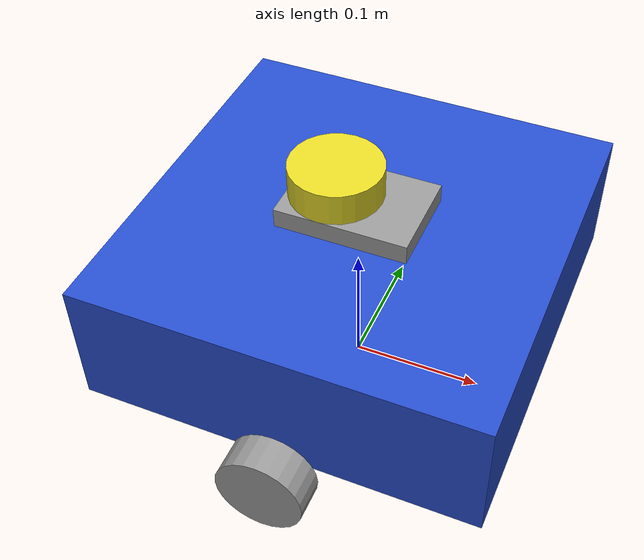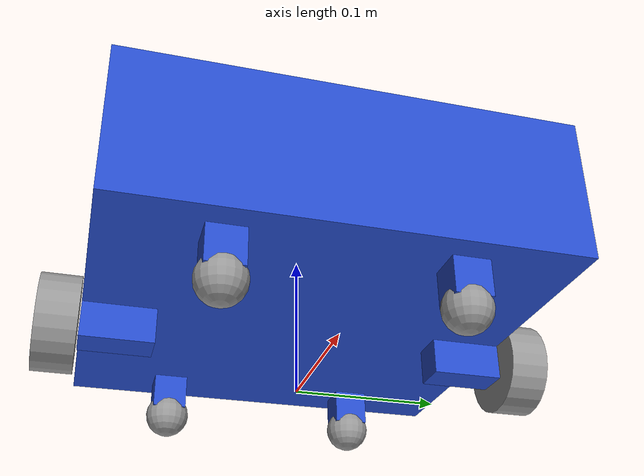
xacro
<?xml version="1.0"?>
<robot name="mybot" xmlns:xacro="http://www.ros.org/wiki/xacro">

  <!-- Start GZ or Ignition depending on ROS 2 Version -->
  <xacro:arg name="is_ignition" default="true"/>

  <!-- Load Simulated or Real Hardware Interfaces -->
  <xacro:arg name="is_sim" default="true"/>

  <!-- Include Gazebo Parameters -->
  <xacro:include filename="$(find mybot_description)/urdf/mybot_gazebo.xacro" />

  <!-- Include ros2_control Plugins -->
  <xacro:include filename="$(find mybot_description)/urdf/mybot_ros2_control.xacro" />

    <xacro:include filename="common_properties.xacro" />

    <xacro:property name="base_length" value="0.3" />
    <xacro:property name="base_width" value="0.3" />
    <xacro:property name="base_height" value="0.1" />

    <xacro:property name="engine_length" value="0.025" />
    <xacro:property name="engine_width" value="0.05" />
    <xacro:property name="engine_height" value="0.025" />

    <xacro:property name="caster_base_length" value="0.025" />
    <xacro:property name="caster_base_width" value="0.025" />
    <xacro:property name="caster_base_height" value="0.025" />

    <xacro:property name="lidar_base_length" value="0.1" />
    <xacro:property name="lidar_base_width" value="0.07" />
    <xacro:property name="lidar_base_height" value="0.03" />

    <xacro:property name="lidar_radius" value="0.035" />
    <xacro:property name="lidar_length" value="0.025" />

    <xacro:property name="wheel_radius" value="0.033" />
    <xacro:property name="wheel_length" value="0.027" />

    <!--Links-->

    <link name="base_footprint" />

    <link name="base_link">
        <visual>
            <geometry>
                <box size="${base_length} ${base_width} ${base_height}" />
            </geometry>
            <origin xyz="0 0 ${base_height / 2.0}" rpy="0 0 0" />
            <material name="blue" />
        </visual>
        <collision>
            <geometry>
                <box size="${base_length} ${base_width} ${base_height}" />
            </geometry>
            <origin xyz="0 0 ${base_height / 2.0}" rpy="0 0 0" />
        </collision>
        <xacro:box_inertia m="5.0" l="${2*base_length}" w="${2*base_width}" h="${2*base_height}"
                           xyz="0 0 ${base_height / 2.0}" rpy="0 0 0" />
    </link>

    <link name="caster_base_front_left_link">
        <visual>
            <geometry>
                <box size="${caster_base_length} ${caster_base_width} ${caster_base_height}" />
            </geometry>
            <origin xyz="0 0 0" rpy="0 0 0" />
            <material name="blue" />
        </visual>
        <collision>
            <geometry>
                <box size="${caster_base_length} ${caster_base_width} ${caster_base_height}" />
            </geometry>
            <origin xyz="0 0 0" rpy="0 0 0" />
        </collision>
        <xacro:box_inertia m="5.0" l="${2*caster_base_length}" w="${2*caster_base_width}" h="${2*caster_base_height}"
                           xyz="0 0 ${caster_base_height / 2.0}" rpy="0 0 0" />
    </link>

    <link name="caster_base_front_right_link">
        <visual>
            <geometry>
                <box size="${caster_base_length} ${caster_base_width} ${caster_base_height}" />
            </geometry>
            <origin xyz="0 0 0" rpy="0 0 0" />
            <material name="blue" />
        </visual>
        <collision>
            <geometry>
                <box size="${caster_base_length} ${caster_base_width} ${caster_base_height}" />
            </geometry>
            <origin xyz="0 0 0" rpy="0 0 0" />
        </collision>
        <xacro:box_inertia m="5.0" l="${2*caster_base_length}" w="${2*caster_base_width}" h="${2*caster_base_height}"
                           xyz="0 0 ${caster_base_height / 2.0}" rpy="0 0 0" />
    </link>

    <link name="caster_base_back_left_link">
        <visual>
            <geometry>
                <box size="${caster_base_length} ${caster_base_width} ${caster_base_height}" />
            </geometry>
            <origin xyz="0 0 0" rpy="0 0 0" />
            <material name="blue" />
        </visual>
        <collision>
            <geometry>
                <box size="${caster_base_length} ${caster_base_width} ${caster_base_height}" />
            </geometry>
            <origin xyz="0 0 0" rpy="0 0 0" />
        </collision>
        <xacro:box_inertia m="5.0" l="${2*caster_base_length}" w="${2*caster_base_width}" h="${2*caster_base_height}"
                           xyz="0 0 ${caster_base_height / 2.0}" rpy="0 0 0" />
    </link>

    <link name="caster_base_back_right_link">
        <visual>
            <geometry>
                <box size="${caster_base_length} ${caster_base_width} ${caster_base_height}" />
            </geometry>
            <origin xyz="0 0 0" rpy="0 0 0" />
            <material name="blue" />
        </visual>
        <collision>
            <geometry>
                <box size="${caster_base_length} ${caster_base_width} ${caster_base_height}" />
            </geometry>
            <origin xyz="0 0 0" rpy="0 0 0" />
        </collision>
        <xacro:box_inertia m="5.0" l="${2*caster_base_length}" w="${2*caster_base_width}" h="${2*caster_base_height}"
                           xyz="0 0 ${caster_base_height / 2.0}" rpy="0 0 0" />
    </link>

    <link name="left_engine_link">
        <visual>
            <geometry>
                <box size="${engine_length} ${engine_width} ${engine_height}" />
            </geometry>
            <origin xyz="0 0 0" rpy="0 0 0" />
            <material name="blue" />
        </visual>
        <collision>
            <geometry>
                <box size="${engine_length} ${engine_width} ${engine_height}" />
            </geometry>
            <origin xyz="0 0 0" rpy="0 0 0" />
        </collision>
        <xacro:box_inertia m="5.0" l="${2*engine_length}" w="${2*engine_width}" h="${2*engine_height}"
                           xyz="0 0 ${engine_height / 2.0}" rpy="0 0 0" />
    </link>

    <link name="right_engine_link">
        <visual>
            <geometry>
                <box size="${engine_length} ${engine_width} ${engine_height}" />
            </geometry>
            <origin xyz="0 0 0" rpy="0 0 0" />
            <material name="blue" />
        </visual>
        <collision>
            <geometry>
                <box size="${engine_length} ${engine_width} ${engine_height}" />
            </geometry>
            <origin xyz="0 0 0" rpy="0 0 0" />
        </collision>
        <xacro:box_inertia m="5.0" l="${2*engine_length}" w="${2*engine_width}" h="${2*engine_height}"
                           xyz="0 0 ${engine_height / 2.0}" rpy="0 0 0" />
    </link>

    <xacro:macro name="wheel_link" params="prefix">
        <link name="${prefix}_wheel_link">
            <visual>
                <geometry>
                    <cylinder radius="${wheel_radius}" length="${wheel_length}" />
                </geometry>
                <origin xyz="0 0 0" rpy="${pi / 2.0} 0 0" />
                <material name="grey" />
            </visual>
            <collision>
                <geometry>
                    <cylinder radius="${wheel_radius}" length="${wheel_length}" />
                </geometry>
                <origin xyz="0 0 0" rpy="${pi / 2.0} 0 0" />
            </collision>
            <xacro:cylinder_inertia m="1.0" r="${2*wheel_radius}" h="${2*wheel_length}"
                                    xyz="0 0 0" rpy="${pi / 2.0} 0 0" />
        </link>
    </xacro:macro>

    <xacro:wheel_link prefix="right" />
    <xacro:wheel_link prefix="left" />

    <link name="caster_wheel_front_left_link">
        <visual>
            <geometry>
                <sphere radius="${wheel_radius / 2.0}" />
            </geometry>
            <origin xyz="0 0 0" rpy="0 0 0" />
            <material name="grey" />
        </visual>
        <collision>
            <geometry>
                <sphere radius="${wheel_radius / 2.0}" />
            </geometry>
            <origin xyz="0 0 0" rpy="0 0 0" />
        </collision>
        <xacro:sphere_inertia m="0.5" r="${2*wheel_radius / 2.0}"
                              xyz="0 0 0" rpy="0 0 0" />
    </link>

    <link name="caster_wheel_front_right_link">
        <visual>
            <geometry>
                <sphere radius="${wheel_radius / 2.0}" />
            </geometry>
            <origin xyz="0 0 0" rpy="0 0 0" />
            <material name="grey" />
        </visual>
        <collision>
            <geometry>
                <sphere radius="${wheel_radius / 2.0}" />
            </geometry>
            <origin xyz="0 0 0" rpy="0 0 0" />
        </collision>
        <xacro:sphere_inertia m="0.5" r="${2*wheel_radius / 2.0}"
                              xyz="0 0 0" rpy="0 0 0" />
    </link>

    <link name="caster_wheel_back_left_link">
        <visual>
            <geometry>
                <sphere radius="${wheel_radius / 2.0}" />
            </geometry>
            <origin xyz="0 0 0" rpy="0 0 0" />
            <material name="grey" />
        </visual>
        <collision>
            <geometry>
                <sphere radius="${wheel_radius / 2.0}" />
            </geometry>
            <origin xyz="0 0 0" rpy="0 0 0" />
        </collision>
        <xacro:sphere_inertia m="0.5" r="${2*wheel_radius / 2.0}"
                              xyz="0 0 0" rpy="0 0 0" />
    </link>

    <link name="caster_wheel_back_right_link">
        <visual>
            <geometry>
                <sphere radius="${wheel_radius / 2.0}" />
            </geometry>
            <origin xyz="0 0 0" rpy="0 0 0" />
            <material name="grey" />
        </visual>
        <collision>
            <geometry>
                <sphere radius="${wheel_radius / 2.0}" />
            </geometry>
            <origin xyz="0 0 0" rpy="0 0 0" />
        </collision>
        <xacro:sphere_inertia m="0.5" r="${2*wheel_radius / 2.0}"
                              xyz="0 0 0" rpy="0 0 0" />
    </link>

    <link name="lidar_base_link">
        <visual>
            <geometry>
                <box size="${lidar_base_length} ${lidar_base_width} ${lidar_base_height}" />
            </geometry>
            <origin xyz="0 0 0" rpy="0 0 0" />
            <material name="grey" />
        </visual>
        <collision>
            <geometry>
                <box size="${lidar_base_length} ${lidar_base_width} ${lidar_base_height}" />
            </geometry>
            <origin xyz="0 0 0" rpy="0 0 0" />
        </collision>
        <xacro:box_inertia m="5.0" l="${2*lidar_base_length}" w="${2*lidar_base_width}" h="${2*lidar_base_height}"
                           xyz="0 0 ${lidar_base_height / 2.0}" rpy="0 0 0" />
    </link>

    <link name="lidar_link">
        <visual>
            <geometry>
                <cylinder radius="${lidar_radius}" length="${lidar_length}" />
            </geometry>
            <origin xyz="0 0 ${lidar_length / 2.0}" rpy="0 0 0" />
            <material name="yellow" />
        </visual>
        <collision>
            <geometry>
                <cylinder radius="${lidar_radius}" length="${lidar_length}" />
            </geometry>
            <origin xyz="0 0 ${lidar_length / 2.0}" rpy="0 0 0" />
        </collision>
        <xacro:cylinder_inertia m="0.3" r="${2*lidar_radius}" h="${2*lidar_length}"
                                xyz="0 0 ${lidar_length / 2.0}" rpy="0 0 0" />
    </link>

    <link name="camera_link">
        <collision>
        <origin xyz="0.005 0.000 0.013" rpy="0 0 0"/>
        <geometry>
            <box size="0.015 0.030 0.027"/>
        </geometry>
        </collision>
    </link>

    <link name="camera_rgb_frame"/>

    <link name="camera_rgb_optical_frame"/>

    <!--Joints-->

    <joint name="base_joint" type="fixed">
        <parent link="base_footprint" />
        <child link="base_link" />
        <origin xyz="0 0 ${wheel_radius + (engine_height / 2.0)}" rpy="0 0 0"/>
    </joint>

    <joint name="base_right_engine_joint" type="fixed">
        <parent link="base_link" />
        <child link="right_engine_link" />
        <origin xyz="0 ${-(base_width - engine_width) / 2.0} ${-(engine_height) / 2.0}" rpy="0 0 0"/>
    </joint>

    <joint name="base_left_engine_joint" type="fixed">
        <parent link="base_link" />
        <child link="left_engine_link" />
        <origin xyz="0 ${(base_width - engine_width) / 2.0} ${-(engine_height) / 2.0}" rpy="0 0 0"/>
    </joint>

    <joint name="base_caster_base_front_left_joint" type="fixed">
        <parent link="base_link" />
        <child link="caster_base_front_left_link" />
        <origin xyz="${base_length / 2.5} ${-(base_width) / 4 } ${-(caster_base_height) / 2.0}" rpy="0 0 0"/>
    </joint>

    <joint name="base_caster_base_front_right_joint" type="fixed">
        <parent link="base_link" />
        <child link="caster_base_front_right_link" />
        <origin xyz="${base_length / 2.5} ${(base_width) / 4 } ${-(caster_base_height) / 2.0}" rpy="0 0 0"/>
    </joint>

    <joint name="base_caster_base_back_left_joint" type="fixed">
        <parent link="base_link" />
        <child link="caster_base_back_left_link" />
        <origin xyz="${-base_length / 2.5} ${-(base_width) / 4 } ${-(caster_base_height) / 2.0}" rpy="0 0 0"/>
    </joint>

    <joint name="base_caster_base_back_right_joint" type="fixed">
        <parent link="base_link" />
        <child link="caster_base_back_right_link" />
        <origin xyz="${-base_length / 2.5} ${(base_width) / 4 } ${-(caster_base_height) / 2.0}" rpy="0 0 0"/>
    </joint>

    <joint name="right_engine_right_wheel_joint" type="continuous">
        <parent link="right_engine_link" />
        <child link="right_wheel_link" />
        <origin xyz="0 ${-(wheel_length + (engine_height / 2.0))} 0" rpy="0 0 0" />
        <axis xyz="0 1 0" />
    </joint>

    <joint name="left_engine_left_wheel_joint" type="continuous">
        <parent link="left_engine_link" />
        <child link="left_wheel_link" />
        <origin xyz="0 ${(wheel_length + (engine_height / 2.0))} 0" rpy="0 0 0" />
        <axis xyz="0 1 0" />
    </joint>

    <joint name="caster_base_caster_wheel_front_left_joint" type="fixed">
        <parent link="caster_base_front_left_link" />
        <child link="caster_wheel_front_left_link" />
        <origin xyz="0 0 ${-wheel_radius / 2.0}" rpy="0 0 0" />
    </joint>

    <joint name="caster_base_caster_wheel_front_right_joint" type="fixed">
        <parent link="caster_base_front_right_link" />
        <child link="caster_wheel_front_right_link" />
        <origin xyz="0 0 ${-wheel_radius / 2.0}" rpy="0 0 0" />
    </joint>

    <joint name="caster_base_caster_wheel_back_left_joint" type="fixed">
        <parent link="caster_base_back_left_link" />
        <child link="caster_wheel_back_left_link" />
        <origin xyz="0 0 ${-wheel_radius / 2.0}" rpy="0 0 0" />
    </joint>

    <joint name="caster_base_caster_wheel_back_right_joint" type="fixed">
        <parent link="caster_base_back_right_link" />
        <child link="caster_wheel_back_right_link" />
        <origin xyz="0 0 ${-wheel_radius / 2.0}" rpy="0 0 0" />
    </joint>
    <joint name="base_lidar_base_joint" type="fixed">
        <parent link="base_link" />
        <child link="lidar_base_link" />
        <origin xyz="0 0 ${base_height}" rpy="0 0 0" />
    </joint>

    <joint name="lidar_base__lidar_joint" type="fixed">
        <parent link="lidar_base_link" />
        <child link="lidar_link" />
        <origin xyz="${-lidar_base_length / 6.0} 0 ${lidar_base_height / 2.0}" rpy="0 0 0" />
    </joint>

    <joint name="camera_joint" type="fixed">
        <origin xyz="0.040 -0.000 0.110" rpy="0 0 0"/>
        <parent link="base_link"/>
        <child link="camera_link"/>
     </joint>

    <joint name="camera_rgb_joint" type="fixed">
        <origin xyz="0.003 0.000 0.009" rpy="0 0 0"/>
        <parent link="camera_link"/>
        <child link="camera_rgb_frame"/>
    </joint>

    <joint name="camera_rgb_optical_joint" type="fixed">
        <origin xyz="0 0 0" rpy="-1.5707 0 -1.57"/>
        <parent link="camera_rgb_frame"/>
        <child link="camera_rgb_optical_frame"/>
    </joint>

</robot>
